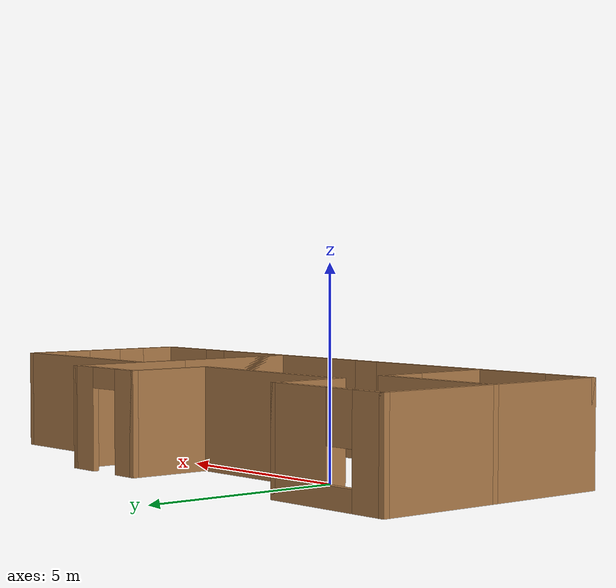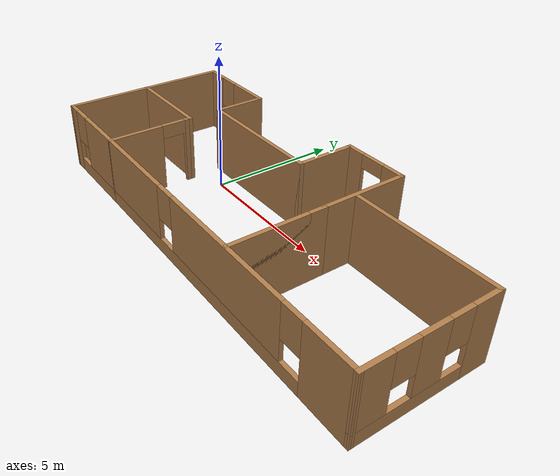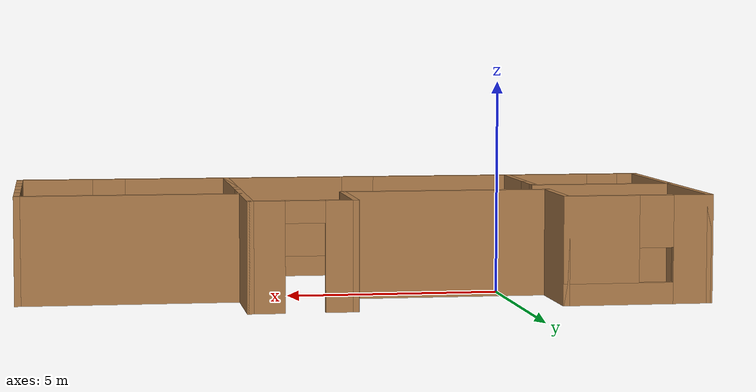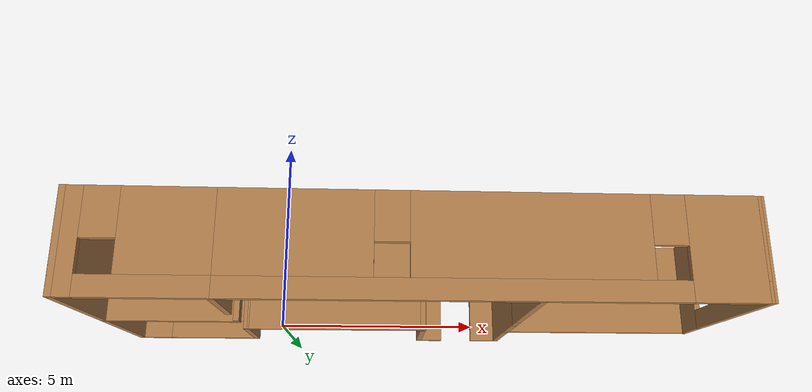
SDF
<?xml version='1.0'?>
<sdf version='1.6'>
  <model name='mybuilding'>
    <pose frame=''>3.40607 -0.52571 0 0 -0 0</pose>
    <link name='Wall_21'>
      <collision name='Wall_21_Collision'>
        <geometry>
          <box>
            <size>3.25 0.15 2.5</size>
          </box>
        </geometry>
        <pose frame=''>0 0 1.25 0 -0 0</pose>
      </collision>
      <visual name='Wall_21_Visual'>
        <pose frame=''>0 0 1.25 0 -0 0</pose>
        <geometry>
          <box>
            <size>3.25 0.15 2.5</size>
          </box>
        </geometry>
        <material>
          <script>
            <uri>file://media/materials/scripts/gazebo.material</uri>
            <name>Gazebo/Wood</name>
          </script>
          <ambient>0.435294 0.796078 0.67451 1</ambient>
        </material>
        <meta>
          <layer>0</layer>
        </meta>
      </visual>
      <pose frame=''>-7.82796 -1.64563 0 0 0 -1.5708</pose>
    </link>
    <link name='Wall_22'>
      <pose frame=''>-6.15297 -3.19563 0 0 -0 0</pose>
      <visual name='Wall_22_Visual_0'>
        <pose frame=''>-1.48057 0 1.25 0 -0 0</pose>
        <geometry>
          <box>
            <size>0.53885 0.15 2.5</size>
          </box>
        </geometry>
        <material>
          <script>
            <uri>file://media/materials/scripts/gazebo.material</uri>
            <name>Gazebo/Wood</name>
          </script>
          <ambient>0.435294 0.796078 0.67451 1</ambient>
        </material>
        <meta>
          <layer>0</layer>
        </meta>
      </visual>
      <collision name='Wall_22_Collision_0'>
        <geometry>
          <box>
            <size>0.53885 0.15 2.5</size>
          </box>
        </geometry>
        <pose frame=''>-1.48057 0 1.25 0 -0 0</pose>
      </collision>
      <visual name='Wall_22_Visual_1'>
        <pose frame=''>0.269425 0 0.25 0 -0 0</pose>
        <geometry>
          <box>
            <size>2.96115 0.15 0.5</size>
          </box>
        </geometry>
        <material>
          <script>
            <uri>file://media/materials/scripts/gazebo.material</uri>
            <name>Gazebo/Wood</name>
          </script>
          <ambient>0.435294 0.796078 0.67451 1</ambient>
        </material>
        <meta>
          <layer>0</layer>
        </meta>
      </visual>
      <collision name='Wall_22_Collision_1'>
        <geometry>
          <box>
            <size>2.96115 0.15 0.5</size>
          </box>
        </geometry>
        <pose frame=''>0.269425 0 0.25 0 -0 0</pose>
      </collision>
      <visual name='Wall_22_Visual_2'>
        <pose frame=''>0.669425 0 1.5 0 -0 0</pose>
        <geometry>
          <box>
            <size>2.16115 0.15 2</size>
          </box>
        </geometry>
        <material>
          <script>
            <uri>file://media/materials/scripts/gazebo.material</uri>
            <name>Gazebo/Wood</name>
          </script>
          <ambient>0.435294 0.796078 0.67451 1</ambient>
        </material>
        <meta>
          <layer>0</layer>
        </meta>
      </visual>
      <collision name='Wall_22_Collision_2'>
        <geometry>
          <box>
            <size>2.16115 0.15 2</size>
          </box>
        </geometry>
        <pose frame=''>0.669425 0 1.5 0 -0 0</pose>
      </collision>
      <visual name='Wall_22_Visual_3'>
        <pose frame=''>-0.81115 0 1.9 0 -0 0</pose>
        <geometry>
          <box>
            <size>0.8 0.15 1.2</size>
          </box>
        </geometry>
        <material>
          <script>
            <uri>file://media/materials/scripts/gazebo.material</uri>
            <name>Gazebo/Wood</name>
          </script>
          <ambient>0.435294 0.796078 0.67451 1</ambient>
        </material>
        <meta>
          <layer>0</layer>
        </meta>
      </visual>
      <collision name='Wall_22_Collision_3'>
        <geometry>
          <box>
            <size>0.8 0.15 1.2</size>
          </box>
        </geometry>
        <pose frame=''>-0.81115 0 1.9 0 -0 0</pose>
      </collision>
    </link>
    <link name='Wall_23'>
      <pose frame=''>-4.47797 -1.64563 0 0 -0 1.5708</pose>
      <visual name='Wall_23_Visual_0'>
        <pose frame=''>-0.609459 0 1.25 0 -0 0</pose>
        <geometry>
          <box>
            <size>2.03108 0.15 2.5</size>
          </box>
        </geometry>
        <material>
          <script>
            <uri>file://media/materials/scripts/gazebo.material</uri>
            <name>Gazebo/Wood</name>
          </script>
          <ambient>0.435294 0.796078 0.67451 1</ambient>
        </material>
        <meta>
          <layer>0</layer>
        </meta>
      </visual>
      <collision name='Wall_23_Collision_0'>
        <geometry>
          <box>
            <size>2.03108 0.15 2.5</size>
          </box>
        </geometry>
        <pose frame=''>-0.609459 0 1.25 0 -0 0</pose>
      </collision>
      <visual name='Wall_23_Visual_1'>
        <pose frame=''>1.46554 0 1.25 0 -0 0</pose>
        <geometry>
          <box>
            <size>0.318918 0.15 2.5</size>
          </box>
        </geometry>
        <material>
          <script>
            <uri>file://media/materials/scripts/gazebo.material</uri>
            <name>Gazebo/Wood</name>
          </script>
          <ambient>0.435294 0.796078 0.67451 1</ambient>
        </material>
        <meta>
          <layer>0</layer>
        </meta>
      </visual>
      <collision name='Wall_23_Collision_1'>
        <geometry>
          <box>
            <size>0.318918 0.15 2.5</size>
          </box>
        </geometry>
        <pose frame=''>1.46554 0 1.25 0 -0 0</pose>
      </collision>
      <visual name='Wall_23_Visual_2'>
        <pose frame=''>0.856082 0 2.25 0 -0 0</pose>
        <geometry>
          <box>
            <size>0.9 0.15 0.5</size>
          </box>
        </geometry>
        <material>
          <script>
            <uri>file://media/materials/scripts/gazebo.material</uri>
            <name>Gazebo/Wood</name>
          </script>
          <ambient>0.435294 0.796078 0.67451 1</ambient>
        </material>
        <meta>
          <layer>0</layer>
        </meta>
      </visual>
      <collision name='Wall_23_Collision_2'>
        <geometry>
          <box>
            <size>0.9 0.15 0.5</size>
          </box>
        </geometry>
        <pose frame=''>0.856082 0 2.25 0 -0 0</pose>
      </collision>
    </link>
    <link name='Wall_25'>
      <collision name='Wall_25_Collision'>
        <geometry>
          <box>
            <size>3.5 0.15 2.5</size>
          </box>
        </geometry>
        <pose frame=''>0 0 1.25 0 -0 0</pose>
      </collision>
      <visual name='Wall_25_Visual'>
        <pose frame=''>0 0 1.25 0 -0 0</pose>
        <geometry>
          <box>
            <size>3.5 0.15 2.5</size>
          </box>
        </geometry>
        <material>
          <script>
            <uri>file://media/materials/scripts/gazebo.material</uri>
            <name>Gazebo/Wood</name>
          </script>
          <ambient>0.435294 0.796078 0.67451 1</ambient>
        </material>
        <meta>
          <layer>0</layer>
        </meta>
      </visual>
      <pose frame=''>-6.15297 -0.095628 0 0 -0 0</pose>
    </link>
    <link name='Wall_30'>
      <collision name='Wall_30_Collision'>
        <geometry>
          <box>
            <size>3.25 0.15 2.5</size>
          </box>
        </geometry>
        <pose frame=''>0 0 1.25 0 -0 0</pose>
      </collision>
      <visual name='Wall_30_Visual'>
        <pose frame=''>0 0 1.25 0 -0 0</pose>
        <geometry>
          <box>
            <size>3.25 0.15 2.5</size>
          </box>
        </geometry>
        <material>
          <script>
            <uri>file://media/materials/scripts/gazebo.material</uri>
            <name>Gazebo/Wood</name>
          </script>
          <ambient>1 1 1 1</ambient>
        </material>
        <meta>
          <layer>0</layer>
        </meta>
      </visual>
      <pose frame=''>-7.82796 1.45437 0 0 -0 1.5708</pose>
    </link>
    <link name='Wall_31'>
      <pose frame=''>-6.15297 3.00437 0 0 -0 0</pose>
      <visual name='Wall_31_Visual_0'>
        <pose frame=''>-1.28397 0 1.25 0 -0 0</pose>
        <geometry>
          <box>
            <size>0.932071 0.15 2.5</size>
          </box>
        </geometry>
        <material>
          <script>
            <uri>file://media/materials/scripts/gazebo.material</uri>
            <name>Gazebo/Wood</name>
          </script>
          <ambient>1 1 1 1</ambient>
        </material>
        <meta>
          <layer>0</layer>
        </meta>
      </visual>
      <collision name='Wall_31_Collision_0'>
        <geometry>
          <box>
            <size>0.932071 0.15 2.5</size>
          </box>
        </geometry>
        <pose frame=''>-1.28397 0 1.25 0 -0 0</pose>
      </collision>
      <visual name='Wall_31_Visual_1'>
        <pose frame=''>0.466035 0 0.25 0 -0 0</pose>
        <geometry>
          <box>
            <size>2.56793 0.15 0.5</size>
          </box>
        </geometry>
        <material>
          <script>
            <uri>file://media/materials/scripts/gazebo.material</uri>
            <name>Gazebo/Wood</name>
          </script>
          <ambient>1 1 1 1</ambient>
        </material>
        <meta>
          <layer>0</layer>
        </meta>
      </visual>
      <collision name='Wall_31_Collision_1'>
        <geometry>
          <box>
            <size>2.56793 0.15 0.5</size>
          </box>
        </geometry>
        <pose frame=''>0.466035 0 0.25 0 -0 0</pose>
      </collision>
      <visual name='Wall_31_Visual_2'>
        <pose frame=''>0.866035 0 1.5 0 -0 0</pose>
        <geometry>
          <box>
            <size>1.76793 0.15 2</size>
          </box>
        </geometry>
        <material>
          <script>
            <uri>file://media/materials/scripts/gazebo.material</uri>
            <name>Gazebo/Wood</name>
          </script>
          <ambient>1 1 1 1</ambient>
        </material>
        <meta>
          <layer>0</layer>
        </meta>
      </visual>
      <collision name='Wall_31_Collision_2'>
        <geometry>
          <box>
            <size>1.76793 0.15 2</size>
          </box>
        </geometry>
        <pose frame=''>0.866035 0 1.5 0 -0 0</pose>
      </collision>
      <visual name='Wall_31_Visual_3'>
        <pose frame=''>-0.417929 0 1.9 0 -0 0</pose>
        <geometry>
          <box>
            <size>0.8 0.15 1.2</size>
          </box>
        </geometry>
        <material>
          <script>
            <uri>file://media/materials/scripts/gazebo.material</uri>
            <name>Gazebo/Wood</name>
          </script>
          <ambient>1 1 1 1</ambient>
        </material>
        <meta>
          <layer>0</layer>
        </meta>
      </visual>
      <collision name='Wall_31_Collision_3'>
        <geometry>
          <box>
            <size>0.8 0.15 1.2</size>
          </box>
        </geometry>
        <pose frame=''>-0.417929 0 1.9 0 -0 0</pose>
      </collision>
    </link>
    <link name='Wall_32'>
      <collision name='Wall_32_Collision'>
        <geometry>
          <box>
            <size>2 0.15 2.5</size>
          </box>
        </geometry>
        <pose frame=''>0 0 1.25 0 -0 0</pose>
      </collision>
      <visual name='Wall_32_Visual'>
        <pose frame=''>0 0 1.25 0 -0 0</pose>
        <geometry>
          <box>
            <size>2 0.15 2.5</size>
          </box>
        </geometry>
        <material>
          <script>
            <uri>file://media/materials/scripts/gazebo.material</uri>
            <name>Gazebo/Wood</name>
          </script>
          <ambient>1 1 1 1</ambient>
        </material>
        <meta>
          <layer>0</layer>
        </meta>
      </visual>
      <pose frame=''>-4.47797 2.07937 0 0 0 -1.5708</pose>
    </link>
    <link name='Wall_33'>
      <collision name='Wall_33_Collision'>
        <geometry>
          <box>
            <size>5 0.15 2.5</size>
          </box>
        </geometry>
        <pose frame=''>0 0 1.25 0 -0 0</pose>
      </collision>
      <visual name='Wall_33_Visual'>
        <pose frame=''>0 0 1.25 0 -0 0</pose>
        <geometry>
          <box>
            <size>5 0.15 2.5</size>
          </box>
        </geometry>
        <material>
          <script>
            <uri>file://media/materials/scripts/gazebo.material</uri>
            <name>Gazebo/Wood</name>
          </script>
          <ambient>1 1 1 1</ambient>
        </material>
        <meta>
          <layer>0</layer>
        </meta>
      </visual>
      <pose frame=''>-2.05296 1.15437 0 0 -0 0</pose>
    </link>
    <link name='Wall_34'>
      <collision name='Wall_34_Collision'>
        <geometry>
          <box>
            <size>2.25 0.15 2.5</size>
          </box>
        </geometry>
        <pose frame=''>0 0 1.25 0 -0 0</pose>
      </collision>
      <visual name='Wall_34_Visual'>
        <pose frame=''>0 0 1.25 0 -0 0</pose>
        <geometry>
          <box>
            <size>2.25 0.15 2.5</size>
          </box>
        </geometry>
        <material>
          <script>
            <uri>file://media/materials/scripts/gazebo.material</uri>
            <name>Gazebo/Wood</name>
          </script>
          <ambient>1 1 1 1</ambient>
        </material>
        <meta>
          <layer>0</layer>
        </meta>
      </visual>
      <pose frame=''>0.372035 2.20437 0 0 -0 1.5708</pose>
    </link>
    <link name='Wall_35'>
      <pose frame=''>1.54703 3.25437 0 0 -0 0</pose>
      <visual name='Wall_35_Visual_0'>
        <pose frame=''>-0.872674 0 1.25 0 -0 0</pose>
        <geometry>
          <box>
            <size>0.754653 0.15 2.5</size>
          </box>
        </geometry>
        <material>
          <script>
            <uri>file://media/materials/scripts/gazebo.material</uri>
            <name>Gazebo/Wood</name>
          </script>
          <ambient>1 1 1 1</ambient>
        </material>
        <meta>
          <layer>0</layer>
        </meta>
      </visual>
      <collision name='Wall_35_Collision_0'>
        <geometry>
          <box>
            <size>0.754653 0.15 2.5</size>
          </box>
        </geometry>
        <pose frame=''>-0.872674 0 1.25 0 -0 0</pose>
      </collision>
      <visual name='Wall_35_Visual_1'>
        <pose frame=''>0.827326 0 1.25 0 -0 0</pose>
        <geometry>
          <box>
            <size>0.845347 0.15 2.5</size>
          </box>
        </geometry>
        <material>
          <script>
            <uri>file://media/materials/scripts/gazebo.material</uri>
            <name>Gazebo/Wood</name>
          </script>
          <ambient>1 1 1 1</ambient>
        </material>
        <meta>
          <layer>0</layer>
        </meta>
      </visual>
      <collision name='Wall_35_Collision_1'>
        <geometry>
          <box>
            <size>0.845347 0.15 2.5</size>
          </box>
        </geometry>
        <pose frame=''>0.827326 0 1.25 0 -0 0</pose>
      </collision>
      <visual name='Wall_35_Visual_2'>
        <pose frame=''>-0.045347 0 2.25 0 -0 0</pose>
        <geometry>
          <box>
            <size>0.9 0.15 0.5</size>
          </box>
        </geometry>
        <material>
          <script>
            <uri>file://media/materials/scripts/gazebo.material</uri>
            <name>Gazebo/Wood</name>
          </script>
          <ambient>1 1 1 1</ambient>
        </material>
        <meta>
          <layer>0</layer>
        </meta>
      </visual>
      <collision name='Wall_35_Collision_2'>
        <geometry>
          <box>
            <size>0.9 0.15 0.5</size>
          </box>
        </geometry>
        <pose frame=''>-0.045347 0 2.25 0 -0 0</pose>
      </collision>
    </link>
    <link name='Wall_36'>
      <collision name='Wall_36_Collision'>
        <geometry>
          <box>
            <size>3.25 0.15 2.5</size>
          </box>
        </geometry>
        <pose frame=''>0 0 1.25 0 -0 0</pose>
      </collision>
      <visual name='Wall_36_Visual'>
        <pose frame=''>0 0 1.25 0 -0 0</pose>
        <geometry>
          <box>
            <size>3.25 0.15 2.5</size>
          </box>
        </geometry>
        <material>
          <script>
            <uri>file://media/materials/scripts/gazebo.material</uri>
            <name>Gazebo/Wood</name>
          </script>
          <ambient>0.435294 0.796078 0.67451 1</ambient>
        </material>
        <meta>
          <layer>0</layer>
        </meta>
      </visual>
      <pose frame=''>2.72203 1.70437 0 0 0 -1.5708</pose>
    </link>
    <link name='Wall_38'>
      <collision name='Wall_38_Collision'>
        <geometry>
          <box>
            <size>5.25 0.15 2.5</size>
          </box>
        </geometry>
        <pose frame=''>0 0 1.25 0 -0 0</pose>
      </collision>
      <visual name='Wall_38_Visual'>
        <pose frame=''>0 0 1.25 0 -0 0</pose>
        <geometry>
          <box>
            <size>5.25 0.15 2.5</size>
          </box>
        </geometry>
        <material>
          <script>
            <uri>file://media/materials/scripts/gazebo.material</uri>
            <name>Gazebo/Wood</name>
          </script>
          <ambient>0.435294 0.796078 0.67451 1</ambient>
        </material>
        <meta>
          <layer>0</layer>
        </meta>
      </visual>
      <pose frame=''>5.27761 1.34598 0 0 -0 0</pose>
    </link>
    <link name='Wall_39'>
      <pose frame=''>7.82761 -0.954017 0 0 0 -1.5708</pose>
      <visual name='Wall_39_Visual_0'>
        <pose frame=''>-1.85515 0 1.25 0 -0 0</pose>
        <geometry>
          <box>
            <size>1.03971 0.15 2.5</size>
          </box>
        </geometry>
        <material>
          <script>
            <uri>file://media/materials/scripts/gazebo.material</uri>
            <name>Gazebo/Wood</name>
          </script>
          <ambient>0.435294 0.796078 0.67451 1</ambient>
        </material>
        <meta>
          <layer>0</layer>
        </meta>
      </visual>
      <collision name='Wall_39_Collision_0'>
        <geometry>
          <box>
            <size>1.03971 0.15 2.5</size>
          </box>
        </geometry>
        <pose frame=''>-1.85515 0 1.25 0 -0 0</pose>
      </collision>
      <visual name='Wall_39_Visual_1'>
        <pose frame=''>0.519853 0 0.25 0 -0 0</pose>
        <geometry>
          <box>
            <size>3.71029 0.15 0.5</size>
          </box>
        </geometry>
        <material>
          <script>
            <uri>file://media/materials/scripts/gazebo.material</uri>
            <name>Gazebo/Wood</name>
          </script>
          <ambient>0.435294 0.796078 0.67451 1</ambient>
        </material>
        <meta>
          <layer>0</layer>
        </meta>
      </visual>
      <collision name='Wall_39_Collision_1'>
        <geometry>
          <box>
            <size>3.71029 0.15 0.5</size>
          </box>
        </geometry>
        <pose frame=''>0.519853 0 0.25 0 -0 0</pose>
      </collision>
      <visual name='Wall_39_Visual_2'>
        <pose frame=''>-0.0332 0 1.5 0 -0 0</pose>
        <geometry>
          <box>
            <size>1.00419 0.15 2</size>
          </box>
        </geometry>
        <material>
          <script>
            <uri>file://media/materials/scripts/gazebo.material</uri>
            <name>Gazebo/Wood</name>
          </script>
          <ambient>0.435294 0.796078 0.67451 1</ambient>
        </material>
        <meta>
          <layer>0</layer>
        </meta>
      </visual>
      <collision name='Wall_39_Collision_2'>
        <geometry>
          <box>
            <size>1.00419 0.15 2</size>
          </box>
        </geometry>
        <pose frame=''>-0.0332 0 1.5 0 -0 0</pose>
      </collision>
      <visual name='Wall_39_Visual_3'>
        <pose frame=''>1.82195 0 1.5 0 -0 0</pose>
        <geometry>
          <box>
            <size>1.10611 0.15 2</size>
          </box>
        </geometry>
        <material>
          <script>
            <uri>file://media/materials/scripts/gazebo.material</uri>
            <name>Gazebo/Wood</name>
          </script>
          <ambient>0.435294 0.796078 0.67451 1</ambient>
        </material>
        <meta>
          <layer>0</layer>
        </meta>
      </visual>
      <collision name='Wall_39_Collision_3'>
        <geometry>
          <box>
            <size>1.10611 0.15 2</size>
          </box>
        </geometry>
        <pose frame=''>1.82195 0 1.5 0 -0 0</pose>
      </collision>
      <visual name='Wall_39_Visual_4'>
        <pose frame=''>-0.935294 0 1.9 0 -0 0</pose>
        <geometry>
          <box>
            <size>0.8 0.15 1.2</size>
          </box>
        </geometry>
        <material>
          <script>
            <uri>file://media/materials/scripts/gazebo.material</uri>
            <name>Gazebo/Wood</name>
          </script>
          <ambient>0.435294 0.796078 0.67451 1</ambient>
        </material>
        <meta>
          <layer>0</layer>
        </meta>
      </visual>
      <collision name='Wall_39_Collision_4'>
        <geometry>
          <box>
            <size>0.8 0.15 1.2</size>
          </box>
        </geometry>
        <pose frame=''>-0.935294 0 1.9 0 -0 0</pose>
      </collision>
      <visual name='Wall_39_Visual_5'>
        <pose frame=''>0.868893 0 1.9 0 -0 0</pose>
        <geometry>
          <box>
            <size>0.8 0.15 1.2</size>
          </box>
        </geometry>
        <material>
          <script>
            <uri>file://media/materials/scripts/gazebo.material</uri>
            <name>Gazebo/Wood</name>
          </script>
          <ambient>0.435294 0.796078 0.67451 1</ambient>
        </material>
        <meta>
          <layer>0</layer>
        </meta>
      </visual>
      <collision name='Wall_39_Collision_5'>
        <geometry>
          <box>
            <size>0.8 0.15 1.2</size>
          </box>
        </geometry>
        <pose frame=''>0.868893 0 1.9 0 -0 0</pose>
      </collision>
    </link>
    <link name='Wall_40'>
      <pose frame=''>1.67482 -3.22482 0 0 -0 3.13685</pose>
      <visual name='Wall_40_Visual_0'>
        <pose frame=''>-5.2976 0 1.25 0 -0 0</pose>
        <geometry>
          <box>
            <size>1.86051 0.15 2.5</size>
          </box>
        </geometry>
        <material>
          <script>
            <uri>file://media/materials/scripts/gazebo.material</uri>
            <name>Gazebo/Wood</name>
          </script>
          <ambient>1 1 1 1</ambient>
        </material>
        <meta>
          <layer>0</layer>
        </meta>
      </visual>
      <collision name='Wall_40_Collision_0'>
        <geometry>
          <box>
            <size>1.86051 0.15 2.5</size>
          </box>
        </geometry>
        <pose frame=''>-5.2976 0 1.25 0 -0 0</pose>
      </collision>
      <visual name='Wall_40_Visual_1'>
        <pose frame=''>0.930252 0 0.25 0 -0 0</pose>
        <geometry>
          <box>
            <size>10.5952 0.15 0.5</size>
          </box>
        </geometry>
        <material>
          <script>
            <uri>file://media/materials/scripts/gazebo.material</uri>
            <name>Gazebo/Wood</name>
          </script>
          <ambient>1 1 1 1</ambient>
        </material>
        <meta>
          <layer>0</layer>
        </meta>
      </visual>
      <collision name='Wall_40_Collision_1'>
        <geometry>
          <box>
            <size>10.5952 0.15 0.5</size>
          </box>
        </geometry>
        <pose frame=''>0.930252 0 0.25 0 -0 0</pose>
      </collision>
      <visual name='Wall_40_Visual_2'>
        <pose frame=''>-0.844536 0 1.5 0 -0 0</pose>
        <geometry>
          <box>
            <size>5.44563 0.15 2</size>
          </box>
        </geometry>
        <material>
          <script>
            <uri>file://media/materials/scripts/gazebo.material</uri>
            <name>Gazebo/Wood</name>
          </script>
          <ambient>1 1 1 1</ambient>
        </material>
        <meta>
          <layer>0</layer>
        </meta>
      </visual>
      <collision name='Wall_40_Collision_2'>
        <geometry>
          <box>
            <size>5.44563 0.15 2</size>
          </box>
        </geometry>
        <pose frame=''>-0.844536 0 1.5 0 -0 0</pose>
      </collision>
      <visual name='Wall_40_Visual_3'>
        <pose frame=''>4.45307 0 1.5 0 -0 0</pose>
        <geometry>
          <box>
            <size>3.54958 0.15 2</size>
          </box>
        </geometry>
        <material>
          <script>
            <uri>file://media/materials/scripts/gazebo.material</uri>
            <name>Gazebo/Wood</name>
          </script>
          <ambient>1 1 1 1</ambient>
        </material>
        <meta>
          <layer>0</layer>
        </meta>
      </visual>
      <collision name='Wall_40_Collision_3'>
        <geometry>
          <box>
            <size>3.54958 0.15 2</size>
          </box>
        </geometry>
        <pose frame=''>4.45307 0 1.5 0 -0 0</pose>
      </collision>
      <visual name='Wall_40_Visual_4'>
        <pose frame=''>-3.96735 0 1.9 0 -0 0</pose>
        <geometry>
          <box>
            <size>0.8 0.15 1.2</size>
          </box>
        </geometry>
        <material>
          <script>
            <uri>file://media/materials/scripts/gazebo.material</uri>
            <name>Gazebo/Wood</name>
          </script>
          <ambient>1 1 1 1</ambient>
        </material>
        <meta>
          <layer>0</layer>
        </meta>
      </visual>
      <collision name='Wall_40_Collision_4'>
        <geometry>
          <box>
            <size>0.8 0.15 1.2</size>
          </box>
        </geometry>
        <pose frame=''>-3.96735 0 1.9 0 -0 0</pose>
      </collision>
      <visual name='Wall_40_Visual_5'>
        <pose frame=''>2.27828 0 1.9 0 -0 0</pose>
        <geometry>
          <box>
            <size>0.8 0.15 1.2</size>
          </box>
        </geometry>
        <material>
          <script>
            <uri>file://media/materials/scripts/gazebo.material</uri>
            <name>Gazebo/Wood</name>
          </script>
          <ambient>1 1 1 1</ambient>
        </material>
        <meta>
          <layer>0</layer>
        </meta>
      </visual>
      <collision name='Wall_40_Collision_5'>
        <geometry>
          <box>
            <size>0.8 0.15 1.2</size>
          </box>
        </geometry>
        <pose frame=''>2.27828 0 1.9 0 -0 0</pose>
      </collision>
    </link>
    <link name='Wall_42'>
      <pose frame=''>2.72203 -1.52063 0 0 0 -1.5708</pose>
      <visual name='Wall_42_Visual_0'>
        <pose frame=''>0 0 1.25 0 -0 0</pose>
        <geometry>
          <box>
            <size>3.5 0.15 2.5</size>
          </box>
        </geometry>
        <material>
          <script>
            <uri>file://media/materials/scripts/gazebo.material</uri>
            <name>Gazebo/Wood</name>
          </script>
          <ambient>0.435294 0.796078 0.67451 1</ambient>
        </material>
        <meta>
          <layer>0</layer>
        </meta>
      </visual>
      <collision name='Wall_42_Collision_0'>
        <geometry>
          <box>
            <size>3.5 0.15 2.5</size>
          </box>
        </geometry>
        <pose frame=''>0 0 1.25 0 -0 0</pose>
      </collision>
      <visual name='Wall_42_Visual_1'>
        <pose frame=''>0.314351 0 1.25 0 -0 0</pose>
        <geometry>
          <box>
            <size>2.8713 0.15 2.5</size>
          </box>
        </geometry>
        <material>
          <script>
            <uri>file://media/materials/scripts/gazebo.material</uri>
            <name>Gazebo/Wood</name>
          </script>
          <ambient>0.435294 0.796078 0.67451 1</ambient>
        </material>
        <meta>
          <layer>0</layer>
        </meta>
      </visual>
      <collision name='Wall_42_Collision_1'>
        <geometry>
          <box>
            <size>2.8713 0.15 2.5</size>
          </box>
        </geometry>
        <pose frame=''>0.314351 0 1.25 0 -0 0</pose>
      </collision>
    </link>
    <static>1</static>
  </model>
</sdf>
